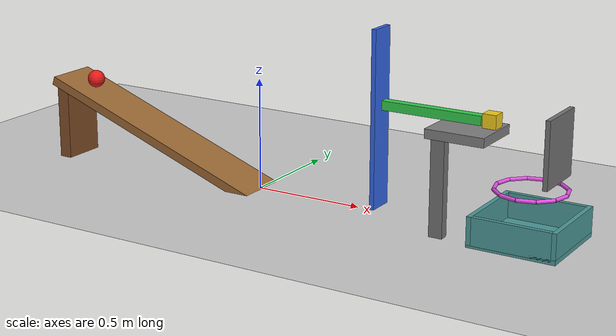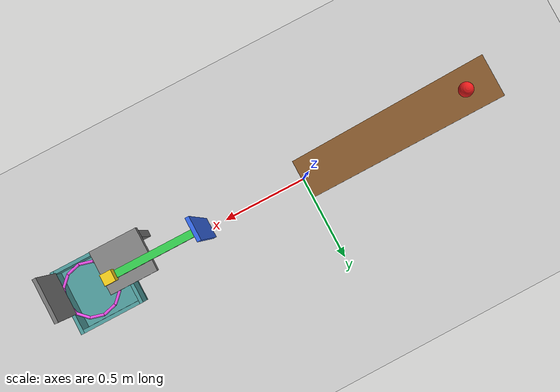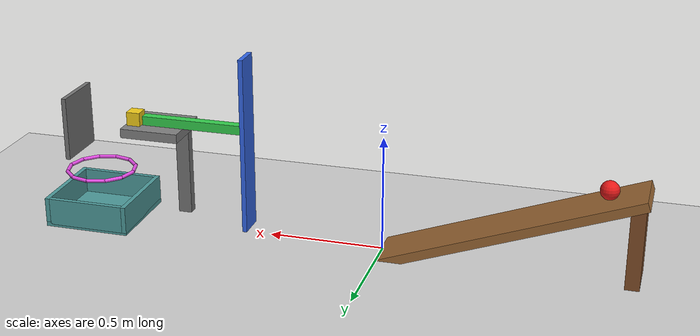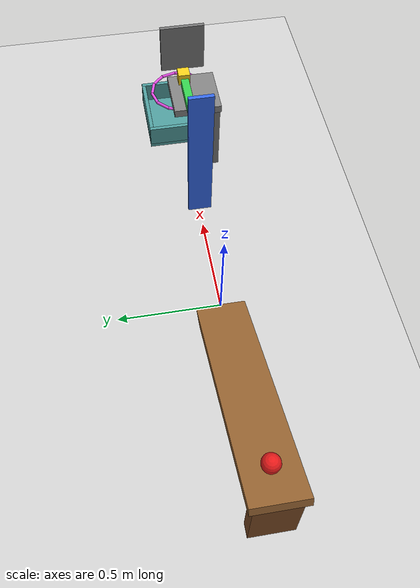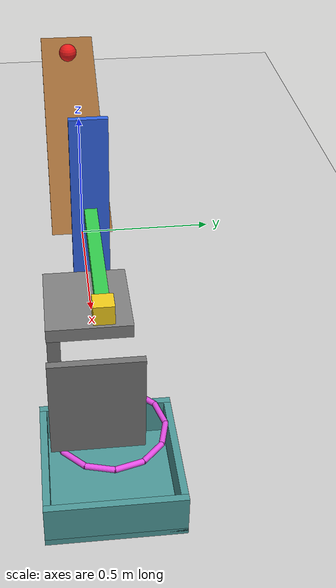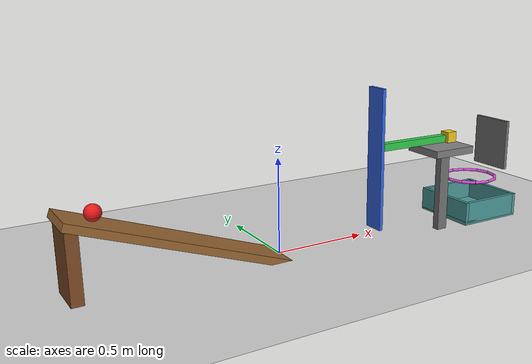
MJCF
<mujoco model="ramp_paddle_slider_block">
  <option timestep="0.002"/>
  <visual>
    <global offwidth="1280" offheight="720"/>
  </visual>
  <worldbody>
    <light name="sun" pos="0.3 -1 3" dir="0 0.3 -1" directional="true"/>
    <geom name="floor" type="plane" size="3 3 0.1" rgba="0.8 0.8 0.8 1"/>

    <!-- Ramp: 20 deg incline, top surface meets floor at x=0 -->
    <body name="ramp" pos="0 0 0">
      <geom name="ramp_surface" type="box" size="0.6 0.12 0.02" pos="-0.52367 0 0.16932" euler="0 20 0" rgba="0.6 0.4 0.2 1"/>
      <geom name="ramp_support" type="box" size="0.03 0.1 0.17" pos="-1.05 0 0.17" rgba="0.5 0.3 0.15 1"/>
    </body>

    <!-- Trigger ball, centre 1 m up the slope -->
    <body name="ball" pos="-0.92601 0 0.37961">
      <freejoint name="ball_free"/>
      <geom name="ball_geom" type="sphere" size="0.04" mass="0.3" condim="6" friction="1 0.005 0.002" rgba="0.9 0.1 0.1 1"/>
    </body>

    <!-- Paddle hanging from a pivot at z=0.8 -->
    <body name="paddle" pos="0.6 0 0.8">
      <joint name="paddle_hinge" type="hinge" axis="0 1 0" pos="0 0 0" damping="0.01"/>
      <geom name="paddle_geom" type="box" size="0.01 0.06 0.3875" pos="0 0 -0.3875" mass="0.2" rgba="0.2 0.4 0.9 1"/>
    </body>

    <!-- Horizontal slider just above the ledge, limited travel -->
    <body name="slider" pos="0.845 0 0.475">
      <joint name="slider_slide" type="slide" axis="1 0 0" limited="true" range="0 0.14"/>
      <geom name="slider_geom" type="box" size="0.225 0.02 0.02" mass="0.1" rgba="0.2 0.8 0.3 1"/>
    </body>

    <!-- Ledge with support column and a backstop wall forming a wide drop chute -->
    <body name="ledge" pos="0 0 0">
      <geom name="ledge_top" type="box" size="0.13 0.12 0.02" pos="1.02 -0.04 0.43" rgba="0.5 0.5 0.5 1"/>
      <geom name="ledge_column" type="box" size="0.03 0.02 0.205" pos="0.95 -0.14 0.205" rgba="0.45 0.45 0.45 1"/>
      <geom name="ledge_backstop" type="box" size="0.01 0.12 0.14" pos="1.41 -0.04 0.42" rgba="0.45 0.45 0.45 1"/>
    </body>

    <!-- Payload block sitting near the ledge edge -->
    <body name="block" pos="1.11 0 0.48">
      <freejoint name="block_free"/>
      <geom name="block_geom" type="box" size="0.03 0.03 0.03" mass="0.1" rgba="0.95 0.8 0.1 1"/>
    </body>

    <!-- Horizontal hoop (radius 0.15) made of 12 capsules, centred under the chute -->
    <body name="hoop" pos="1.29 0 0.22">
      <geom name="hoop_s0" type="capsule" size="0.008" fromto="0.15 0 0 0.1299 0.075 0" rgba="0.9 0.3 0.9 1"/>
      <geom name="hoop_s1" type="capsule" size="0.008" fromto="0.1299 0.075 0 0.075 0.1299 0" rgba="0.9 0.3 0.9 1"/>
      <geom name="hoop_s2" type="capsule" size="0.008" fromto="0.075 0.1299 0 0 0.15 0" rgba="0.9 0.3 0.9 1"/>
      <geom name="hoop_s3" type="capsule" size="0.008" fromto="0 0.15 0 -0.075 0.1299 0" rgba="0.9 0.3 0.9 1"/>
      <geom name="hoop_s4" type="capsule" size="0.008" fromto="-0.075 0.1299 0 -0.1299 0.075 0" rgba="0.9 0.3 0.9 1"/>
      <geom name="hoop_s5" type="capsule" size="0.008" fromto="-0.1299 0.075 0 -0.15 0 0" rgba="0.9 0.3 0.9 1"/>
      <geom name="hoop_s6" type="capsule" size="0.008" fromto="-0.15 0 0 -0.1299 -0.075 0" rgba="0.9 0.3 0.9 1"/>
      <geom name="hoop_s7" type="capsule" size="0.008" fromto="-0.1299 -0.075 0 -0.075 -0.1299 0" rgba="0.9 0.3 0.9 1"/>
      <geom name="hoop_s8" type="capsule" size="0.008" fromto="-0.075 -0.1299 0 0 -0.15 0" rgba="0.9 0.3 0.9 1"/>
      <geom name="hoop_s9" type="capsule" size="0.008" fromto="0 -0.15 0 0.075 -0.1299 0" rgba="0.9 0.3 0.9 1"/>
      <geom name="hoop_s10" type="capsule" size="0.008" fromto="0.075 -0.1299 0 0.1299 -0.075 0" rgba="0.9 0.3 0.9 1"/>
      <geom name="hoop_s11" type="capsule" size="0.008" fromto="0.1299 -0.075 0 0.15 0 0" rgba="0.9 0.3 0.9 1"/>
    </body>

    <!-- Catching box on the floor under the hoop -->
    <body name="box" pos="1.29 0 0">
      <geom name="box_bottom" type="box" size="0.19 0.19 0.01" pos="0 0 0.01" rgba="0.3 0.6 0.6 1"/>
      <geom name="box_wall_xn" type="box" size="0.01 0.19 0.06" pos="-0.18 0 0.07" rgba="0.3 0.6 0.6 1"/>
      <geom name="box_wall_xp" type="box" size="0.01 0.19 0.06" pos="0.18 0 0.07" rgba="0.3 0.6 0.6 1"/>
      <geom name="box_wall_yn" type="box" size="0.17 0.01 0.06" pos="0 -0.18 0.07" rgba="0.3 0.6 0.6 1"/>
      <geom name="box_wall_yp" type="box" size="0.17 0.01 0.06" pos="0 0.18 0.07" rgba="0.3 0.6 0.6 1"/>
    </body>
  </worldbody>

  <keyframe>
    <key name="start" qpos="-0.92601 0 0.37961 1 0 0 0  0  0  1.11 0 0.48 1 0 0 0"/>
  </keyframe>
</mujoco>
